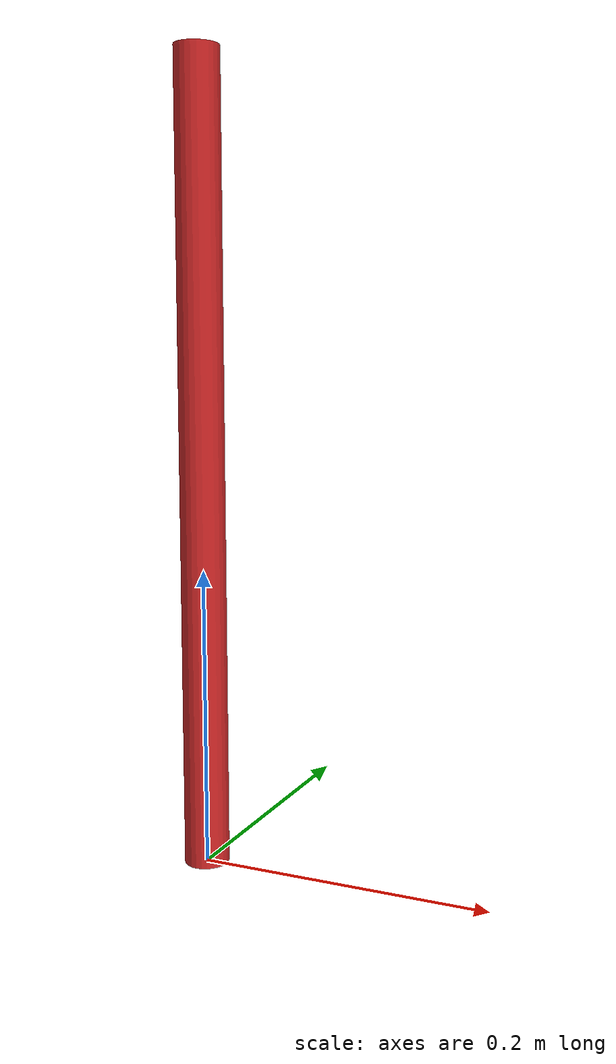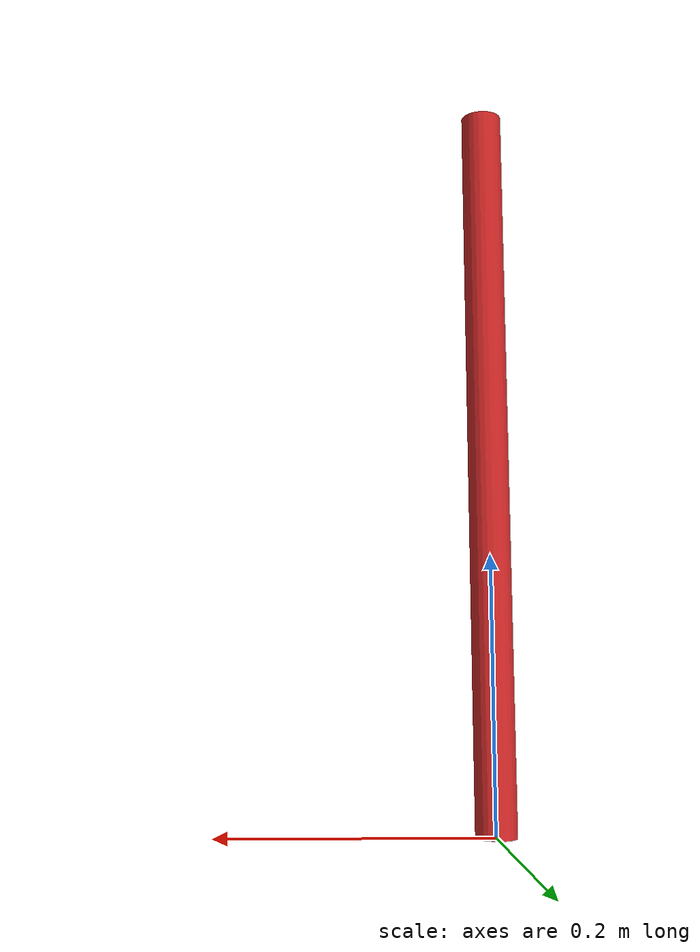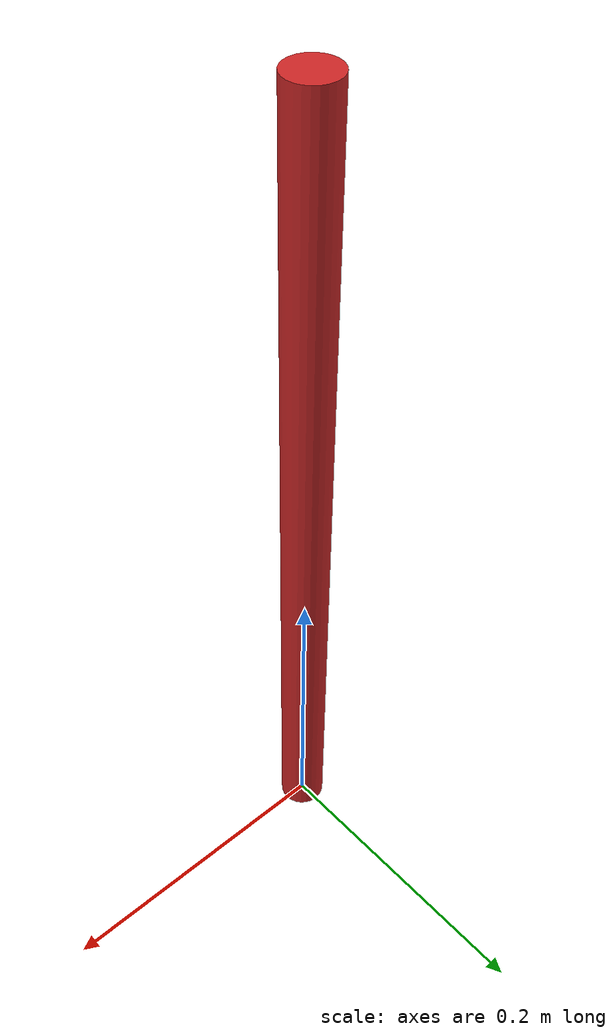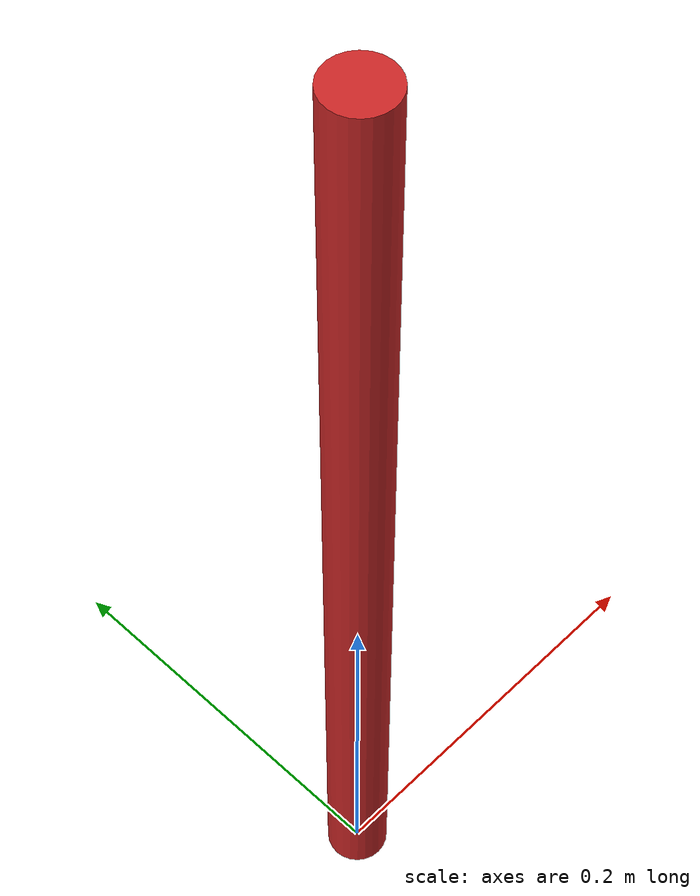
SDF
<?xml version="1.0"?>
<sdf version="1.4">
  <model name="Rod">
		<pose>0 0 0.27 0 0 0</pose>
    <link name="link">
      <inertial>
        <mass>1</mass>
        <inertia>
          <ixx>0.08333</ixx>
          <ixy>0</ixy>
          <ixz>0</ixz>
          <iyy>0.08333</iyy>
          <iyz>0</iyz>
          <izz>0.00125</izz>
        </inertia>
      </inertial>
      <collision name="rod_collision">
        <geometry>
          <cylinder>
            <radius>0.015</radius>
            <!--2.4 cm radius-->
            <length>0.54</length>
          </cylinder>
        </geometry>
      </collision>
      <visual name="rod_visual">
        <geometry>
          <cylinder>
            <radius>0.015</radius>
            <!--2.4 cm radius-->
            <length>0.54</length>
          </cylinder>
        </geometry>
        <material>
          <script>
            <uri>file://media/materials/scripts/gazebo.material</uri>
            <name>Gazebo/Red</name>
          </script>
        </material>
      </visual>
    </link>
  </model>
</sdf>
